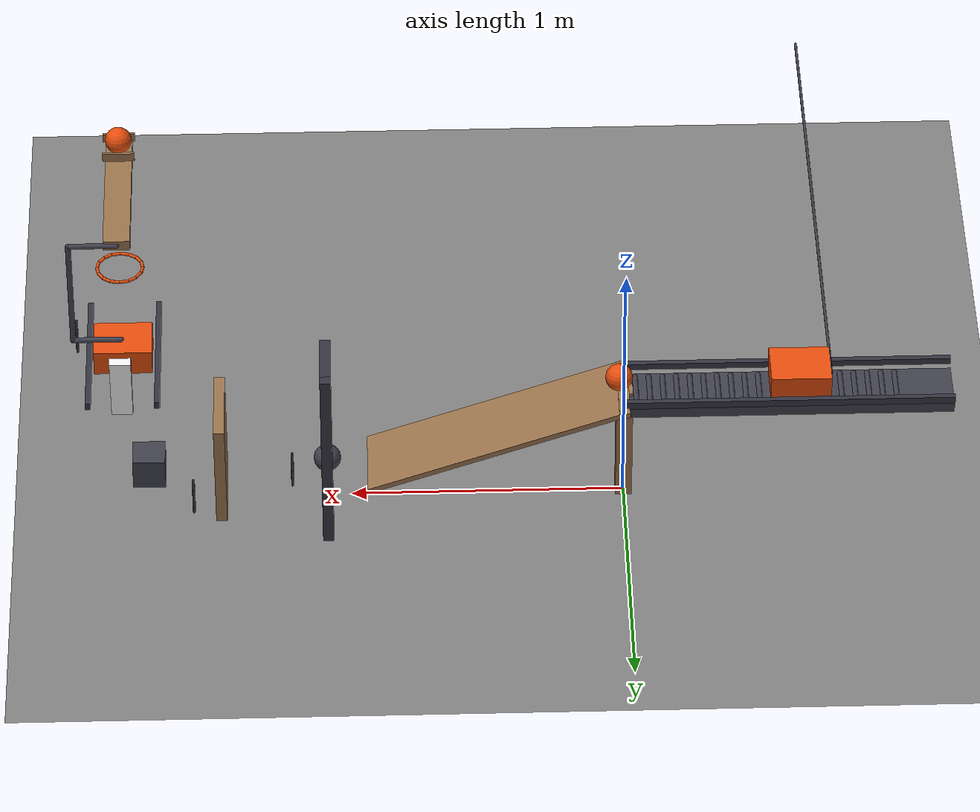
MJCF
<mujoco model="corrected_placement_and_retuned_assisted_chain">
  <compiler angle="radian"/>
  <option timestep="0.002"/>
  <worldbody>
    <geom name="floor" type="plane" size="8 8 0.1" friction="0.68 0 0"/>
    <body name="ramp1">
      <geom name="ramp1_deck" type="box" pos="0.469847 0 0.311613" size="0.5 0.15 0.01" euler="0 0.349066 0" friction="0.68 0 0" solref="0.01 1" rgba="0.6 0.45 0.3 1"/>
      <geom name="ramp1_leg" type="box" pos="0 0 0.241312" size="0.03 0.03 0.241312" friction="0.68 0 0" solref="0.01 1" rgba="0.6 0.45 0.3 1"/>
    </body>
    <body name="cart1 runway">
      <geom name="cart1 runway" type="box" pos="-0.6 0 0.449005" size="0.6 0.1 0.02" friction="0.68 0 0" solref="0.01 1" rgba="0.25 0.25 0.3 1"/>
    </body>
    <body name="runway bearing1" pos="-0.991 0 0.479005">
      <freejoint/>
      <geom name="runway bearing1" type="capsule" size="0.01" fromto="0 0.07 0 0 -0.07 0" mass="0.001" friction="0.68 0 0" solref="0.01 1" rgba="0.25 0.25 0.3 1"/>
    </body>
    <body name="runway bearing2" pos="-0.941 0 0.479005">
      <freejoint/>
      <geom name="runway bearing2" type="capsule" size="0.01" fromto="0 0.07 0 0 -0.07 0" mass="0.001" friction="0.68 0 0" solref="0.01 1" rgba="0.25 0.25 0.3 1"/>
    </body>
    <body name="runway bearing3" pos="-0.891 0 0.479005">
      <freejoint/>
      <geom name="runway bearing3" type="capsule" size="0.01" fromto="0 0.07 0 0 -0.07 0" mass="0.001" friction="0.68 0 0" solref="0.01 1" rgba="0.25 0.25 0.3 1"/>
    </body>
    <body name="runway bearing4" pos="-0.841 0 0.479005">
      <freejoint/>
      <geom name="runway bearing4" type="capsule" size="0.01" fromto="0 0.07 0 0 -0.07 0" mass="0.001" friction="0.68 0 0" solref="0.01 1" rgba="0.25 0.25 0.3 1"/>
    </body>
    <body name="runway bearing5" pos="-0.791 0 0.479005">
      <freejoint/>
      <geom name="runway bearing5" type="capsule" size="0.01" fromto="0 0.07 0 0 -0.07 0" mass="0.001" friction="0.68 0 0" solref="0.01 1" rgba="0.25 0.25 0.3 1"/>
    </body>
    <body name="runway bearing6" pos="-0.741 0 0.479005">
      <freejoint/>
      <geom name="runway bearing6" type="capsule" size="0.01" fromto="0 0.07 0 0 -0.07 0" mass="0.001" friction="0.68 0 0" solref="0.01 1" rgba="0.25 0.25 0.3 1"/>
    </body>
    <body name="runway bearing7" pos="-0.691 0 0.479005">
      <freejoint/>
      <geom name="runway bearing7" type="capsule" size="0.01" fromto="0 0.07 0 0 -0.07 0" mass="0.001" friction="0.68 0 0" solref="0.01 1" rgba="0.25 0.25 0.3 1"/>
    </body>
    <body name="runway bearing8" pos="-0.641 0 0.479005">
      <freejoint/>
      <geom name="runway bearing8" type="capsule" size="0.01" fromto="0 0.07 0 0 -0.07 0" mass="0.001" friction="0.68 0 0" solref="0.01 1" rgba="0.25 0.25 0.3 1"/>
    </body>
    <body name="runway bearing9" pos="-0.591 0 0.479005">
      <freejoint/>
      <geom name="runway bearing9" type="capsule" size="0.01" fromto="0 0.07 0 0 -0.07 0" mass="0.001" friction="0.68 0 0" solref="0.01 1" rgba="0.25 0.25 0.3 1"/>
    </body>
    <body name="runway bearing10" pos="-0.541 0 0.479005">
      <freejoint/>
      <geom name="runway bearing10" type="capsule" size="0.01" fromto="0 0.07 0 0 -0.07 0" mass="0.001" friction="0.68 0 0" solref="0.01 1" rgba="0.25 0.25 0.3 1"/>
    </body>
    <body name="runway bearing11" pos="-0.491 0 0.479005">
      <freejoint/>
      <geom name="runway bearing11" type="capsule" size="0.01" fromto="0 0.07 0 0 -0.07 0" mass="0.001" friction="0.68 0 0" solref="0.01 1" rgba="0.25 0.25 0.3 1"/>
    </body>
    <body name="runway bearing12" pos="-0.441 0 0.479005">
      <freejoint/>
      <geom name="runway bearing12" type="capsule" size="0.01" fromto="0 0.07 0 0 -0.07 0" mass="0.001" friction="0.68 0 0" solref="0.01 1" rgba="0.25 0.25 0.3 1"/>
    </body>
    <body name="runway bearing13" pos="-0.391 0 0.479005">
      <freejoint/>
      <geom name="runway bearing13" type="capsule" size="0.01" fromto="0 0.07 0 0 -0.07 0" mass="0.001" friction="0.68 0 0" solref="0.01 1" rgba="0.25 0.25 0.3 1"/>
    </body>
    <body name="runway bearing14" pos="-0.341 0 0.479005">
      <freejoint/>
      <geom name="runway bearing14" type="capsule" size="0.01" fromto="0 0.07 0 0 -0.07 0" mass="0.001" friction="0.68 0 0" solref="0.01 1" rgba="0.25 0.25 0.3 1"/>
    </body>
    <body name="runway bearing15" pos="-0.291 0 0.479005">
      <freejoint/>
      <geom name="runway bearing15" type="capsule" size="0.01" fromto="0 0.07 0 0 -0.07 0" mass="0.001" friction="0.68 0 0" solref="0.01 1" rgba="0.25 0.25 0.3 1"/>
    </body>
    <body name="runway bearing16" pos="-0.241 0 0.479005">
      <freejoint/>
      <geom name="runway bearing16" type="capsule" size="0.01" fromto="0 0.07 0 0 -0.07 0" mass="0.001" friction="0.68 0 0" solref="0.01 1" rgba="0.25 0.25 0.3 1"/>
    </body>
    <body name="runway bearing17" pos="-0.191 0 0.479005">
      <freejoint/>
      <geom name="runway bearing17" type="capsule" size="0.01" fromto="0 0.07 0 0 -0.07 0" mass="0.001" friction="0.68 0 0" solref="0.01 1" rgba="0.25 0.25 0.3 1"/>
    </body>
    <body name="runway bearing18" pos="-0.141 0 0.479005">
      <freejoint/>
      <geom name="runway bearing18" type="capsule" size="0.01" fromto="0 0.07 0 0 -0.07 0" mass="0.001" friction="0.68 0 0" solref="0.01 1" rgba="0.25 0.25 0.3 1"/>
    </body>
    <body name="runway bearing19" pos="-0.091 0 0.479005">
      <freejoint/>
      <geom name="runway bearing19" type="capsule" size="0.01" fromto="0 0.07 0 0 -0.07 0" mass="0.001" friction="0.68 0 0" solref="0.01 1" rgba="0.25 0.25 0.3 1"/>
    </body>
    <body name="runway bearing20" pos="-0.041 0 0.479005">
      <freejoint/>
      <geom name="runway bearing20" type="capsule" size="0.01" fromto="0 0.07 0 0 -0.07 0" mass="0.001" friction="0.68 0 0" solref="0.01 1" rgba="0.25 0.25 0.3 1"/>
    </body>
    <body name="cart1 left guide">
      <geom name="cart1 left guide" type="box" pos="-0.6 0.11 0.501505" size="0.6 0.01 0.0125" friction="0.68 0 0" solref="0.01 1" rgba="0.2 0.2 0.25 1"/>
    </body>
    <body name="cart1 right guide">
      <geom name="cart1 right guide" type="box" pos="-0.6 -0.11 0.501505" size="0.6 0.01 0.0125" friction="0.68 0 0" solref="0.01 1" rgba="0.2 0.2 0.25 1"/>
    </body>
    <body name="cart1" pos="-0.639479 0 0.539005">
      <freejoint/>
      <geom name="cart1" type="box" pos="0 0 0" size="0.11 0.09 0.05" mass="0.5" friction="0.68 0 0" solref="0.01 1" rgba="0.9 0.3 0.05 1"/>
    </body>
    <body name="cart1 spring driver" pos="-0.754479 -2 0.539005">
      <joint name="cart1_driver_hinge" type="hinge" pos="0 0 0" axis="0 0 1" limited="true" range="-0.1 0" stiffness="72" springref="-0.1" damping="0.04"/>
      <geom name="cart1 spring driver" type="capsule" size="0.005" fromto="0 0 0 0 2 0" mass="0.005" friction="0.68 0 0" solref="0.01 1" rgba="0.25 0.25 0.3 1"/>
    </body>
    <body name="ball1 starting ledge">
      <geom name="ball1 starting ledge" type="box" pos="0.005 0 0.479005" size="0.02 0.15 0.01" friction="0.68 0 0" solref="0.01 1" rgba="0.6 0.45 0.3 1"/>
    </body>
    <body name="ball1" pos="0.020521 0 0.539005">
      <freejoint/>
      <geom name="ball1" type="sphere" pos="0 0 0" size="0.05" mass="0.2" condim="6" friction="0.68 0 0" solref="0.01 1" rgba="0.9 0.3 0.05 1"/>
    </body>
    <body name="pendulum1" pos="1.08969 0 0.68">
      <joint name="pendulum1_hinge" type="hinge" pos="0 0 0" axis="0 1 0" limited="true" range="-1.13446 0.261799" stiffness="1.2" springref="-1.13446" damping="0.04"/>
      <geom name="pendulum1" type="sphere" pos="0 0 -0.5" size="0.05" mass="0.15" friction="0.68 0 0" solref="0.01 1" rgba="0.25 0.25 0.3 1"/>
      <geom name="pendulum rigid rod" type="capsule" size="0.01" fromto="0 0 0 0 0 -0.45" mass="0.2" friction="0.68 0 0" solref="0.01 1" rgba="0.25 0.25 0.3 1"/>
    </body>
    <body name="pendulum support post">
      <geom name="pendulum support post" type="box" pos="1.08969 0.24 0.375" size="0.02 0.02 0.375" friction="0.68 0 0" solref="0.01 1" rgba="0.2 0.2 0.25 1"/>
    </body>
    <body name="pendulum support beam">
      <geom name="pendulum support beam" type="box" pos="1.08969 0.12 0.73" size="0.02 0.12 0.01" friction="0.68 0 0" solref="0.01 1" rgba="0.2 0.2 0.25 1"/>
    </body>
    <body name="pendulum release latch" pos="1.21969 0 0.050096">
      <joint name="pendulum_latch_hinge" type="hinge" pos="0 0 0" axis="0 1 0" limited="true" range="-0.523599 1.5708" damping="0.04"/>
      <geom name="pendulum release latch" type="capsule" size="0.005" fromto="0 0 0 0 0 0.15" mass="1.2" friction="0.68 0 0" solref="0.01 1" rgba="0.2 0.2 0.25 1"/>
    </body>
    <body name="door1" pos="1.48109 -0.16 0.23">
      <joint name="door1_hinge" type="hinge" pos="0 0 0" axis="0 0 1" limited="true" range="-1.22173 0" stiffness="8" springref="-1.22173" damping="0.04"/>
      <geom name="door1" type="box" pos="0 0.16 0" size="0.02 0.16 0.21" mass="0.45" friction="0.68 0 0" solref="0.01 1" rgba="0.6 0.45 0.3 1"/>
    </body>
    <body name="door release latch" pos="1.58109 0.14 0.050096">
      <joint name="door_latch_hinge" type="hinge" pos="0 0 0" axis="0 1 0" limited="true" range="-0.523599 1.5708" damping="0.04"/>
      <geom name="door release latch" type="capsule" size="0.005" fromto="0 0 0 0 0 0.15" mass="7.3" friction="0.68 0 0" solref="0.01 1" rgba="0.2 0.2 0.25 1"/>
    </body>
    <body name="block1" pos="1.75 -0.12 0.06">
      <freejoint/>
      <geom name="block1" type="box" pos="0 0 0" size="0.06 0.06 0.06" mass="0.35" friction="0.68 0 0" solref="0.01 1" rgba="0.25 0.25 0.3 1"/>
    </body>
    <body name="domino1" pos="1.85944 -0.5007 0.12">
      <freejoint/>
      <geom name="domino1" type="box" pos="0 0 0" size="0.04 0.02 0.12" mass="0.25" friction="0.68 0 0" solref="0.01 1" rgba="0.95 0.95 0.95 1"/>
    </body>
    <body name="lever1" pos="1.85944 -0.9807 0.65">
      <joint name="lever1_hinge" type="hinge" pos="0 0 0" axis="1 0 0" limited="true" range="-0.785398 0" stiffness="2" springref="-0.785398" damping="0.04"/>
      <geom name="lever1" type="box" pos="0 0 0" size="0.05 0.3 0.02" mass="0.49" friction="0.68 0 0" solref="0.01 1" rgba="0.6 0.45 0.3 1"/>
      <geom name="lever striker top crossbar" type="capsule" size="0.01" fromto="0 0.3 0 0.18 0.3 0" mass="0.001" friction="0.68 0 0" solref="0.01 1" rgba="0.25 0.25 0.3 1"/>
      <geom name="lever striker vertical" type="capsule" size="0.01" fromto="0.18 0.3 0 0.18 0.3 -0.45" mass="0.004" friction="0.68 0 0" solref="0.01 1" rgba="0.25 0.25 0.3 1"/>
      <geom name="lever striker foot" type="capsule" size="0.01" fromto="0.18 0.3 -0.45 0 0.3 -0.45" mass="0.001" friction="0.68 0 0" solref="0.01 1" rgba="0.25 0.25 0.3 1"/>
      <geom name="lever near retaining lip" type="box" pos="0 -0.19 0.0375" size="0.06 0.005 0.0175" mass="0.002" friction="0.68 0 0" solref="0.01 1" rgba="0.6 0.45 0.3 1"/>
      <geom name="lever far retaining lip" type="box" pos="0 -0.31 0.0375" size="0.06 0.005 0.0175" mass="0.002" friction="0.68 0 0" solref="0.01 1" rgba="0.6 0.45 0.3 1"/>
    </body>
    <body name="lever release latch" pos="2.02944 -0.7707 0.070096">
      <joint name="lever_latch_hinge" type="hinge" pos="0 0 0" axis="1 0 0" limited="true" range="-0.523599 1.5708" damping="0.04"/>
      <geom name="lever release latch" type="capsule" size="0.005" fromto="0 0 0 0 0 0.15" mass="0.65" friction="0.68 0 0" solref="0.01 1" rgba="0.2 0.2 0.25 1"/>
    </body>
    <body name="ball2" pos="1.85944 -1.2307 0.72">
      <freejoint/>
      <geom name="ball2" type="sphere" pos="0 0 0" size="0.05" mass="0.2" condim="6" friction="0.68 0 0" solref="0.01 1" rgba="0.9 0.3 0.05 1"/>
    </body>
    <body name="ring1">
      <geom name="ring1_00" type="capsule" size="0.006" fromto="1.94544 -0.8607 0.4 1.93889 -0.827789 0.4" friction="0.68 0 0" solref="0.01 1" rgba="0.9 0.3 0.05 1"/>
      <geom name="ring1_01" type="capsule" size="0.006" fromto="1.93889 -0.827789 0.4 1.92025 -0.799889 0.4" friction="0.68 0 0" solref="0.01 1" rgba="0.9 0.3 0.05 1"/>
      <geom name="ring1_02" type="capsule" size="0.006" fromto="1.92025 -0.799889 0.4 1.89235 -0.781246 0.4" friction="0.68 0 0" solref="0.01 1" rgba="0.9 0.3 0.05 1"/>
      <geom name="ring1_03" type="capsule" size="0.006" fromto="1.89235 -0.781246 0.4 1.85944 -0.7747 0.4" friction="0.68 0 0" solref="0.01 1" rgba="0.9 0.3 0.05 1"/>
      <geom name="ring1_04" type="capsule" size="0.006" fromto="1.85944 -0.7747 0.4 1.82653 -0.781246 0.4" friction="0.68 0 0" solref="0.01 1" rgba="0.9 0.3 0.05 1"/>
      <geom name="ring1_05" type="capsule" size="0.006" fromto="1.82653 -0.781246 0.4 1.79863 -0.799889 0.4" friction="0.68 0 0" solref="0.01 1" rgba="0.9 0.3 0.05 1"/>
      <geom name="ring1_06" type="capsule" size="0.006" fromto="1.79863 -0.799889 0.4 1.77999 -0.827789 0.4" friction="0.68 0 0" solref="0.01 1" rgba="0.9 0.3 0.05 1"/>
      <geom name="ring1_07" type="capsule" size="0.006" fromto="1.77999 -0.827789 0.4 1.77344 -0.8607 0.4" friction="0.68 0 0" solref="0.01 1" rgba="0.9 0.3 0.05 1"/>
      <geom name="ring1_08" type="capsule" size="0.006" fromto="1.77344 -0.8607 0.4 1.77999 -0.893611 0.4" friction="0.68 0 0" solref="0.01 1" rgba="0.9 0.3 0.05 1"/>
      <geom name="ring1_09" type="capsule" size="0.006" fromto="1.77999 -0.893611 0.4 1.79863 -0.921511 0.4" friction="0.68 0 0" solref="0.01 1" rgba="0.9 0.3 0.05 1"/>
      <geom name="ring1_10" type="capsule" size="0.006" fromto="1.79863 -0.921511 0.4 1.82653 -0.940154 0.4" friction="0.68 0 0" solref="0.01 1" rgba="0.9 0.3 0.05 1"/>
      <geom name="ring1_11" type="capsule" size="0.006" fromto="1.82653 -0.940154 0.4 1.85944 -0.9467 0.4" friction="0.68 0 0" solref="0.01 1" rgba="0.9 0.3 0.05 1"/>
      <geom name="ring1_12" type="capsule" size="0.006" fromto="1.85944 -0.9467 0.4 1.89235 -0.940154 0.4" friction="0.68 0 0" solref="0.01 1" rgba="0.9 0.3 0.05 1"/>
      <geom name="ring1_13" type="capsule" size="0.006" fromto="1.89235 -0.940154 0.4 1.92025 -0.921511 0.4" friction="0.68 0 0" solref="0.01 1" rgba="0.9 0.3 0.05 1"/>
      <geom name="ring1_14" type="capsule" size="0.006" fromto="1.92025 -0.921511 0.4 1.93889 -0.893611 0.4" friction="0.68 0 0" solref="0.01 1" rgba="0.9 0.3 0.05 1"/>
      <geom name="ring1_15" type="capsule" size="0.006" fromto="1.93889 -0.893611 0.4 1.94544 -0.8607 0.4" friction="0.68 0 0" solref="0.01 1" rgba="0.9 0.3 0.05 1"/>
    </body>
    <body name="cart2 forward guide">
      <geom name="cart2 forward guide" type="box" pos="1.98944 -0.8107 0.015" size="0.01 0.3 0.015" friction="0.68 0 0" solref="0.01 1" rgba="0.2 0.2 0.25 1"/>
    </body>
    <body name="cart2 rear guide">
      <geom name="cart2 rear guide" type="box" pos="1.72944 -0.8107 0.015" size="0.01 0.3 0.015" friction="0.68 0 0" solref="0.01 1" rgba="0.2 0.2 0.25 1"/>
    </body>
    <body name="cart2" pos="1.85944 -0.8107 0.05">
      <freejoint/>
      <geom name="cart2" type="box" pos="0 0 0" size="0.11 0.09 0.05" mass="0.5" friction="0.68 0 0" solref="0.01 1" rgba="0.9 0.3 0.05 1"/>
    </body>
  </worldbody>
  <keyframe>
    <key name="start" qpos="-0.991 0 0.479005 1 0 0 0 -0.941 0 0.479005 1 0 0 0 -0.891 0 0.479005 1 0 0 0 -0.841 0 0.479005 1 0 0 0 -0.791 0 0.479005 1 0 0 0 -0.741 0 0.479005 1 0 0 0 -0.691 0 0.479005 1 0 0 0 -0.641 0 0.479005 1 0 0 0 -0.591 0 0.479005 1 0 0 0 -0.541 0 0.479005 1 0 0 0 -0.491 0 0.479005 1 0 0 0 -0.441 0 0.479005 1 0 0 0 -0.391 0 0.479005 1 0 0 0 -0.341 0 0.479005 1 0 0 0 -0.291 0 0.479005 1 0 0 0 -0.241 0 0.479005 1 0 0 0 -0.191 0 0.479005 1 0 0 0 -0.141 0 0.479005 1 0 0 0 -0.091 0 0.479005 1 0 0 0 -0.041 0 0.479005 1 0 0 0 -0.639479 0 0.539005 1 0 0 0 0 0.020521 0 0.539005 1 0 0 0 0 -0.523599 0 -0.523599 1.75 -0.12 0.06 1 0 0 0 1.85944 -0.5007 0.12 1 0 0 0 0 -0.523599 1.85944 -1.2307 0.72 1 0 0 0 1.85944 -0.8107 0.05 1 0 0 0" qvel="0 0 0 0 0 0 0 0 0 0 0 0 0 0 0 0 0 0 0 0 0 0 0 0 0 0 0 0 0 0 0 0 0 0 0 0 0 0 0 0 0 0 0 0 0 0 0 0 0 0 0 0 0 0 0 0 0 0 0 0 0 0 0 0 0 0 0 0 0 0 0 0 0 0 0 0 0 0 0 0 0 0 0 0 0 0 0 0 0 0 0 0 0 0 0 0 0 0 0 0 0 0 0 0 0 0 0 0 0 0 0 0 0 0 0 0 0 0 0 0 0 0 0 0 0 0 0 0 0 0 0 0 0 0 0 0 0 0 0 0 0 0 0 0 0 0 0 0 0 0 0 0 0 0 0 0 0 0 0 0 0 0 0"/>
  </keyframe>
</mujoco>
